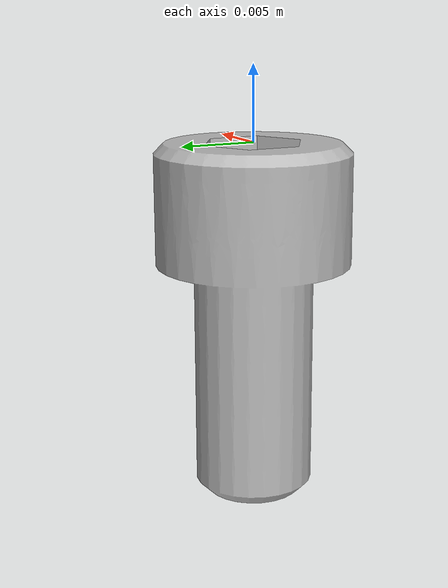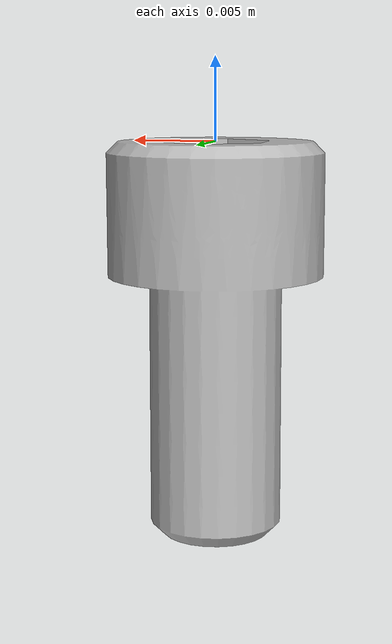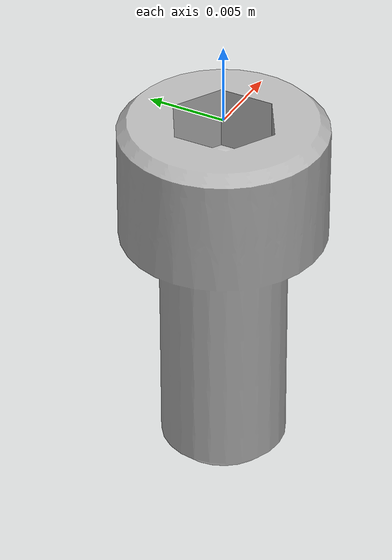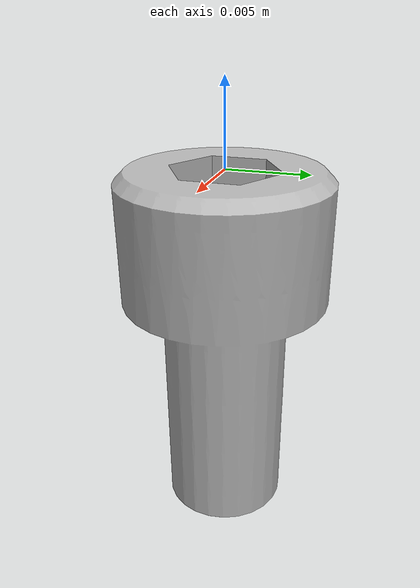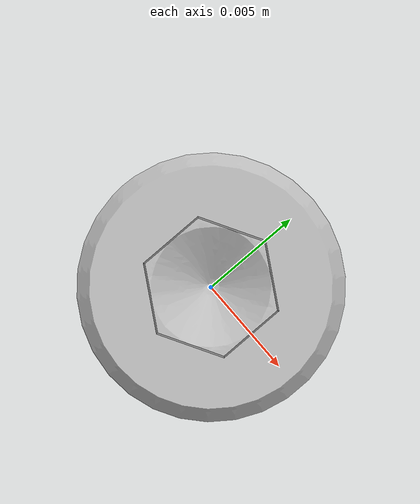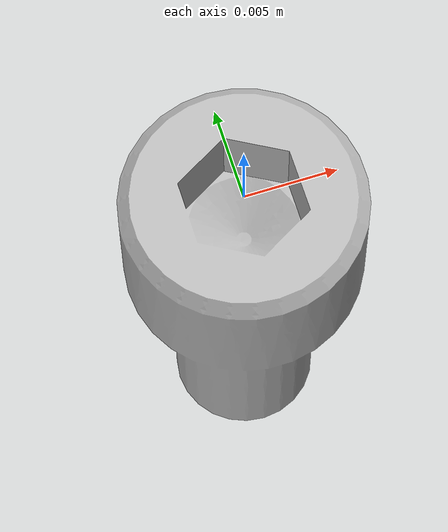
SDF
<?xml version='1.0'?>
<sdf version='1.6'>
  <model name='screw'>
    <link name='screw_body_base_link'>
      <pose frame=''>0 0 0 0 -0 0</pose>
      <inertial>
        <pose frame=''>0 0 -0.009725 0 -0 0</pose>
        <mass>0.0017098</mass>
        <inertia>
          <ixx>9.2996e-08</ixx>
          <ixy>9.0373e-25</ixy>
          <ixz>-3.4064e-22</ixz>
          <iyy>9.2996e-08</iyy>
          <iyz>2.5238e-25</iyz>
          <izz>2.7771e-08</izz>
        </inertia>
      </inertial>
      <self_collide>0</self_collide>
      <enable_wind>0</enable_wind>
      <kinematic>0</kinematic>
      <visual name='screw_body_base_link_visual'>
        <pose frame=''>0 0 0 0 -0 0</pose>
        <geometry>
          <mesh>
            <scale>1 1 1</scale>
            <uri>model://screw/meshes/screw_body_base_link.STL</uri>
          </mesh>
        </geometry>
        <transparency>0</transparency>
        <cast_shadows>1</cast_shadows>
      </visual>
      <collision name='screw_body_base_link_collision'>
        <laser_retro>0</laser_retro>
        <max_contacts>10</max_contacts>
        <pose frame=''>0 0 0 0 -0 0</pose>
        <geometry>
          <mesh>
            <uri>model://screw/meshes/screw_body_base_link.STL</uri>
            <scale>1 1 1</scale>
          </mesh>
        </geometry>
        <surface>
          <friction>
            <ode>
              <mu>1</mu>
              <mu2>1</mu2>
              <fdir1>0 0 0</fdir1>
              <slip1>0</slip1>
              <slip2>0</slip2>
            </ode>
            <torsional>
              <coefficient>1</coefficient>
              <patch_radius>0</patch_radius>
              <surface_radius>0</surface_radius>
              <use_patch_radius>1</use_patch_radius>
              <ode>
                <slip>0</slip>
              </ode>
            </torsional>
          </friction>
          <bounce>
            <restitution_coefficient>0</restitution_coefficient>
            <threshold>1e+06</threshold>
          </bounce>
          <contact>
            <collide_without_contact>0</collide_without_contact>
            <collide_without_contact_bitmask>1</collide_without_contact_bitmask>
            <collide_bitmask>1</collide_bitmask>
            <ode>
              <soft_cfm>0</soft_cfm>
              <soft_erp>0.2</soft_erp>
              <kp>1e+13</kp>
              <kd>1</kd>
              <max_vel>0.01</max_vel>
              <min_depth>0.001</min_depth>
            </ode>
            <bullet>
              <split_impulse>1</split_impulse>
              <split_impulse_penetration_threshold>-0.01</split_impulse_penetration_threshold>
              <soft_cfm>0</soft_cfm>
              <soft_erp>0.2</soft_erp>
              <kp>1e+13</kp>
              <kd>1</kd>
            </bullet>
          </contact>
        </surface>
      </collision>
    </link>
    <static>0</static>
    <allow_auto_disable>1</allow_auto_disable>
  </model>
</sdf>
